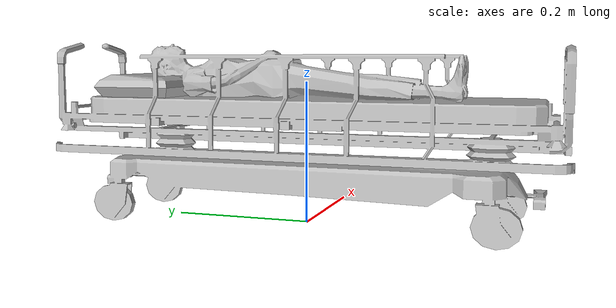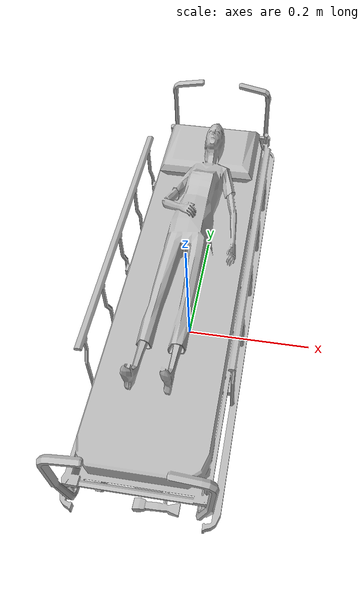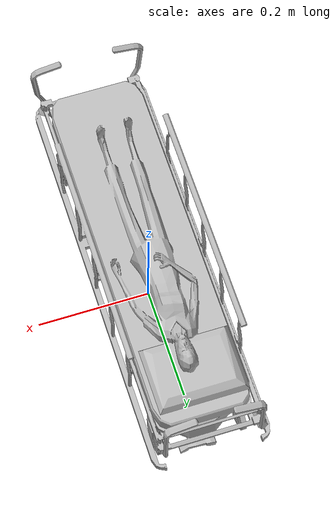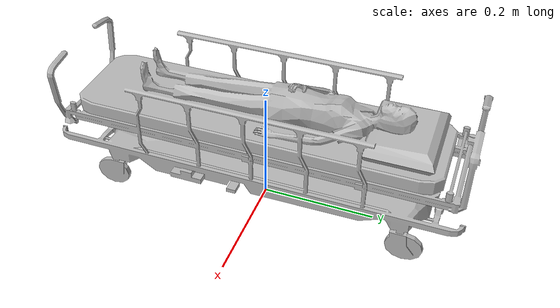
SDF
<?xml version='1.0' encoding='utf-8'?>
<sdf version="1.6">
  <model name="TrolleyBedPatient">
   <static>true</static>
    <link name="body">
      <pose>0 0 0 0 0 0</pose>

      <visual name="visual">
        <geometry>
          <mesh>
            <uri>model://TrolleyBedPatient/meshes/TrolleyBedPatient.obj</uri>
            <scale>0.2 0.3 0.3</scale>
          </mesh>
        </geometry>
      </visual>

      <collision name="collision">
        <geometry>
          <mesh>
            <uri>model://TrolleyBedPatient/meshes/TrolleyBedPatient.obj</uri>
            <scale>0.2 0.3 0.3</scale>
          </mesh>
        </geometry>
      </collision>

    </link>
  </model>
</sdf>
